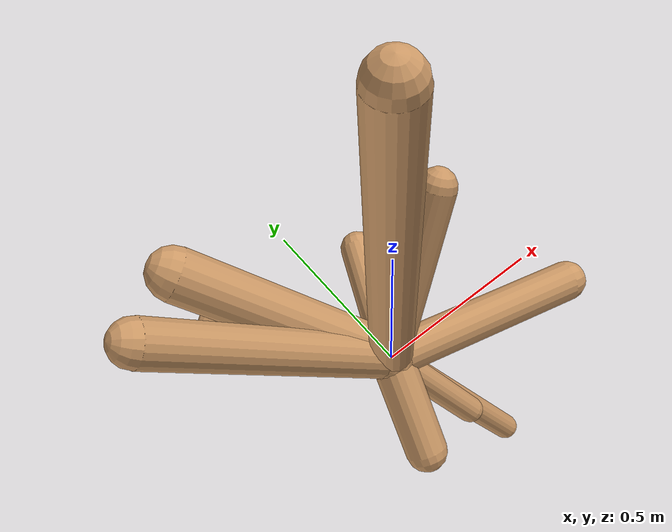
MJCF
<!--
                    joint_number: 9
                    -->
                    <mujoco model="randomrobot">
                        <compiler angle="degree" coordinate="global" inertiafromgeom="true"/>
                        <default>
                        <joint armature="0.01" damping=".1" limited="true"/>
                        <geom conaffinity="0" condim="3" contype="1" density="1000" friction="0.8 .1 .1" rgba="0.8 0.6 .4 1"/>
                        </default>
                        <option integrator="RK4" timestep="0.002"/>
                        <worldbody>
                    <body name='torso' pos='0.00 0.00 1.13'><geom fromto='0 0 0 0.00 0.00 1.00' name='torso_geom' size='0.06' type='capsule'/><inertial mass='0.3'/><body name='L0_D1' pos='0.00 0.00 0.19'><joint axis='1 0 0' name='L0_D1_joint' pos='0 0 0' range='42.07 58.03' type='hinge'/><geom fromto='0 0 0 -0.53 0.22 0.44' name='L0_D1_geom' size='0.06' type='capsule'/><inertial mass='0.3'/></body><body name='L1_D1' pos='0.00 0.00 0.05'><joint axis='0 1 0' name='L1_D1_joint' pos='0 0 0' range='119.92 178.64' type='hinge'/><geom fromto='0 0 0 0.58 -0.12 -0.06' name='L1_D1_geom' size='0.06' type='capsule'/><inertial mass='0.3'/><body name='L2_D0' pos='0.54 -0.11 -0.05'><joint axis='0 1 0' name='L2_D0_joint' pos='0 0 0' range='55.13 131.56' type='hinge'/><geom fromto='0 0 0 0.29 -0.26 -0.53' name='L2_D0_geom' size='0.04' type='capsule'/><inertial mass='0.3'/></body><body name='L3_D0' pos='0.17 -0.03 -0.02'><joint axis='1 0 0' name='L3_D0_joint' pos='0 0 0' range='55.76 125.10' type='hinge'/><geom fromto='0 0 0 0.16 -0.19 -0.29' name='L3_D0_geom' size='0.04' type='capsule'/><inertial mass='0.3'/></body><body name='L4_D0' pos='0.50 -0.10 -0.05'><joint axis='1 0 0' name='L4_D0_joint' pos='0 0 0' range='57.08 81.40' type='hinge'/><geom fromto='0 0 0 0.14 0.32 0.03' name='L4_D0_geom' size='0.05' type='capsule'/><inertial mass='0.3'/></body></body><body name='L5_D1' pos='0.00 0.00 0.45'><joint axis='0 1 0' name='L5_D1_joint' pos='0 0 0' range='64.28 118.35' type='hinge'/><geom fromto='0 0 0 0.24 0.12 0.43' name='L5_D1_geom' size='0.05' type='capsule'/><inertial mass='0.3'/><body name='L6_D0' pos='0.22 0.12 0.41'><joint axis='0 0 1' name='L6_D0_joint' pos='0 0 0' range='10.70 84.95' type='hinge'/><geom fromto='0 0 0 -0.06 -0.23 -0.17' name='L6_D0_geom' size='0.06' type='capsule'/><inertial mass='0.3'/></body></body><body name='L7_D1' pos='0.00 0.00 0.16'><joint axis='0 0 1' name='L7_D1_joint' pos='0 0 0' range='13.79 152.81' type='hinge'/><geom fromto='0 0 0 -0.36 0.37 0.35' name='L7_D1_geom' size='0.07' type='capsule'/><inertial mass='0.3'/><body name='L8_D0' pos='-0.22 0.22 0.21'><joint axis='0 0 1' name='L8_D0_joint' pos='0 0 0' range='13.63 136.34' type='hinge'/><geom fromto='0 0 0 -0.30 0.50 -0.16' name='L8_D0_geom' size='0.04' type='capsule'/><inertial mass='0.3'/></body></body></body>
                        </worldbody>
                    </mujoco>
